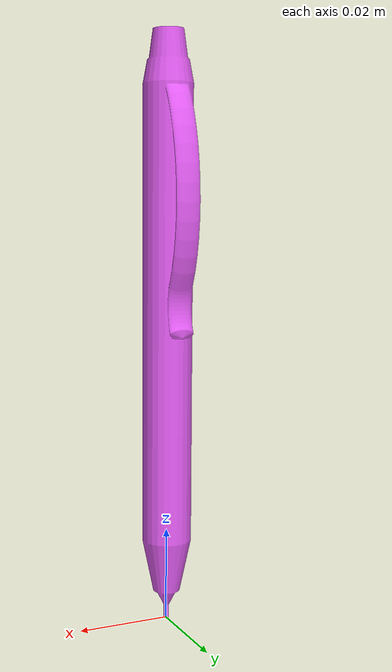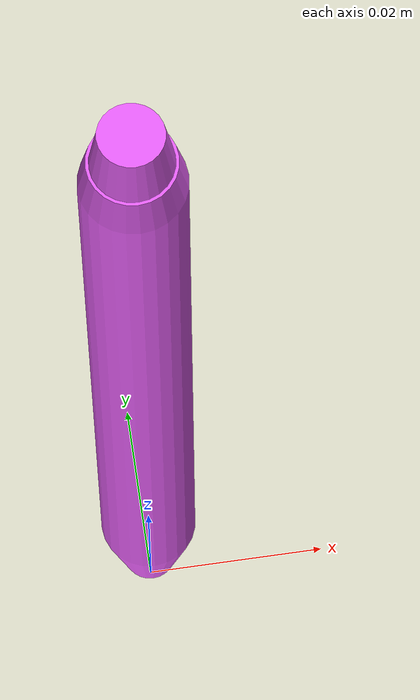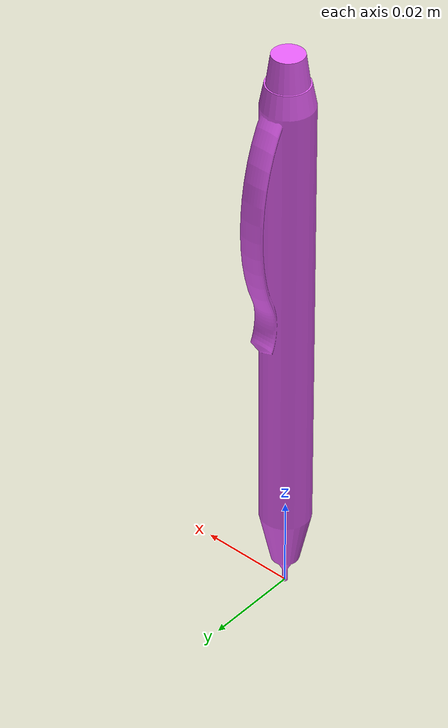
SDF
<?xml version='1.0'?>
<sdf version='1.6'>
  <model name='pen_pink'>
    <link name='link_0'>
        <visual name='visual'>
        <pose frame=''>0 0 0 0 -0 0</pose>
        <geometry>
          <mesh>
            <uri>model://pen_pink/meshes/pen3.dae</uri>
            <scale>1 1 1</scale>
          </mesh>
        </geometry>
        <material>
          <lighting>1</lighting>
          <ambient>0.901 0.368 0.964 1</ambient>
          <diffuse>0.901 0.368 0.964 1</diffuse>
          <specular>0.01 0.01 0.01 1</specular>
          <emissive>0 0 0 1</emissive>
          <shader type='vertex'>
            <normal_map>__default__</normal_map>
          </shader>
        </material>
        <cast_shadows>1</cast_shadows>
        <transparency>0</transparency>
      </visual>
      <collision name='collision'>
        <laser_retro>0</laser_retro>
        <max_contacts>10</max_contacts>
        <pose frame=''>0 0 0 0 -0 0</pose>
        <geometry>
          <mesh>
            <uri>model://pen_pink/meshes/pen3.dae</uri>
            <scale>1 1 1</scale>
          </mesh>
        </geometry>
      </collision>
    </link>
    <static>1</static>
    <allow_auto_disable>1</allow_auto_disable>
  </model>
</sdf>
